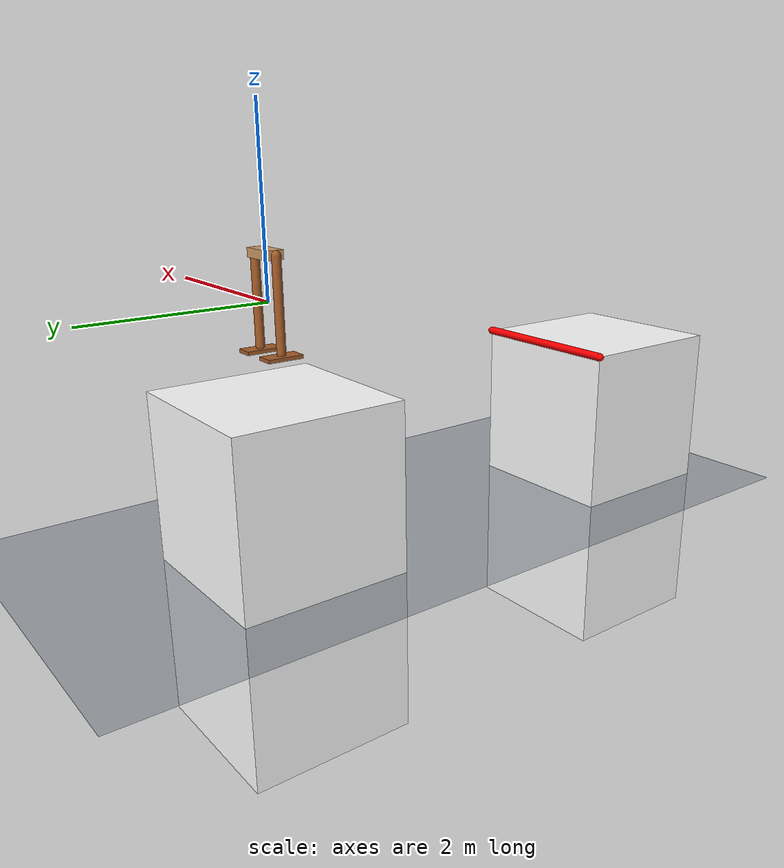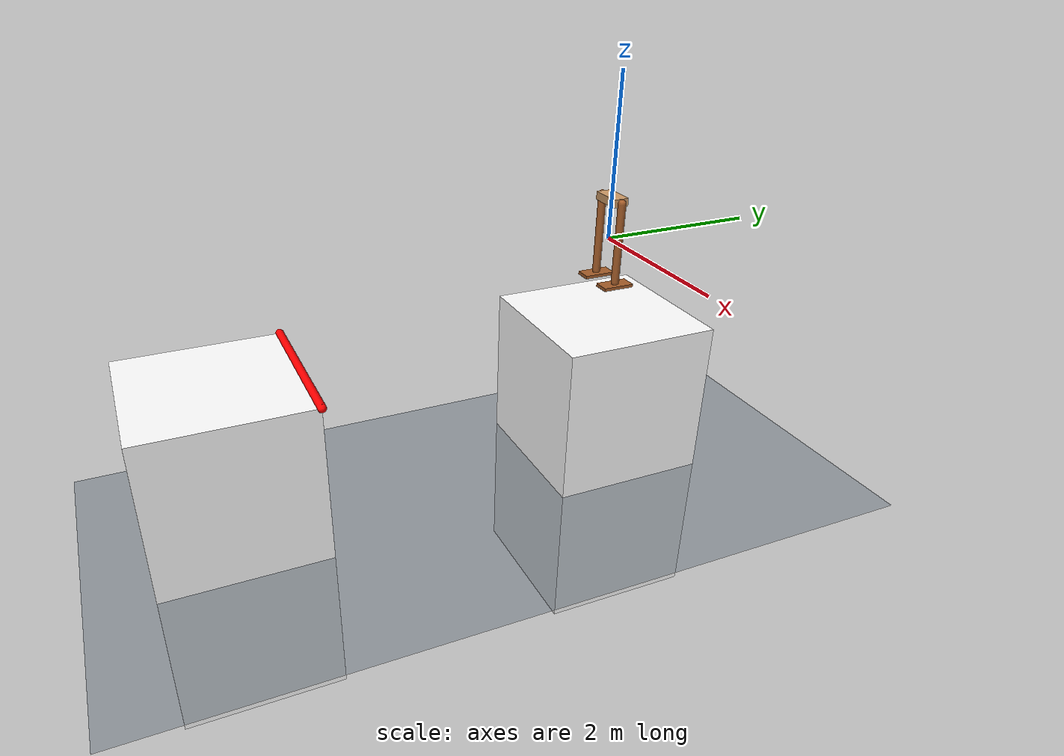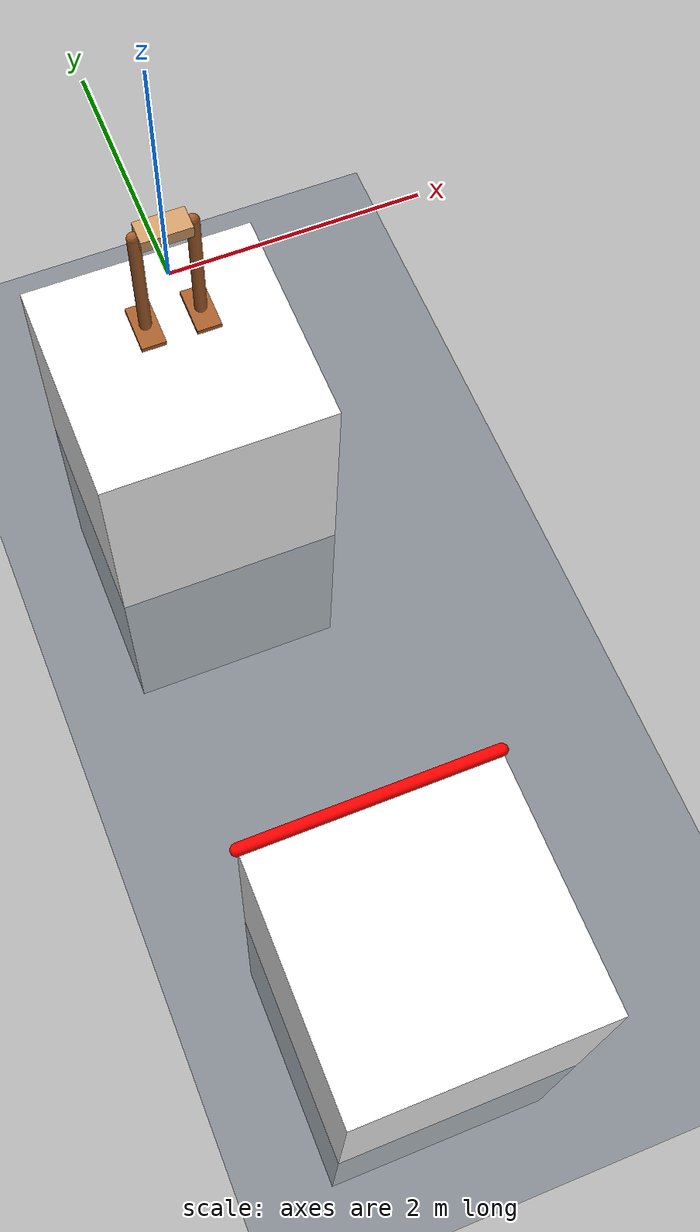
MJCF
<mujoco model="frog">
    <compiler inertiafromgeom="true" angle="degree"/>

    <default>
        <joint limited="true" damping="1" armature="0"/>
        <geom condim="1" material="matgeom"/>
        <motor ctrlrange="-.4 .4" ctrllimited="true"/>
    </default>

    <option timestep="0.005" iterations="50" tolerance="1e-10" solver="Newton" jacobian="dense" cone="pyramidal"/>

    <size nconmax="50" njmax="200" nstack="10000"/>

    <visual>
        <map force="0.1" zfar="30"/>
        <rgba haze="0.15 0.25 0.35 1"/>
        <quality shadowsize="2048"/>
        <global offwidth="800" offheight="800"/>
    </visual>

    <asset>
        <texture type="skybox" builtin="gradient" rgb1="0.3 0.5 0.7" rgb2="0 0 0" width="512" height="512"/>

        <texture name="texplane" type="2d" builtin="checker" rgb1=".2 .3 .4" rgb2=".1 0.15 0.2" width="512" height="512" mark="cross" markrgb=".8 .8 .8"/>

        <texture name="texgeom" type="cube" builtin="flat" mark="cross" width="127" height="1278"
            rgb1="0.8 0.6 0.4" rgb2="0.8 0.6 0.4" markrgb="1 1 1" random="0.01"/>

        <material name="matplane" reflectance="0.3" texture="texplane" texrepeat="1 1" texuniform="true"/>

        <material name="matgeom" texture="texgeom" texuniform="true" rgba="0.8 0.6 .4 1"/>
    </asset>

    <worldbody>
    <geom name="floor" pos="0 0 -3" size="0 0 .25" type="plane" material="matplane" condim="3"/>
    <geom name="platform_start" type="box" size="1 1 2" pos= "0 0 -3" rgba="1 1 1 1"/>
    <geom name="platform_end" type="box" size="1 1 2" pos= "0 -5 -3" rgba="1 1 1 1"/>
    <geom name="highlighted_edge" type="capsule" fromto="-1 -4 -1 1 -4 -1" size="0.05" rgba="1 0 0 1"/>

        <!-- Central Body  -->
        <body name="frog">
            <freejoint/>
        <body name="central_body" pos="0 0 0.5">
            <inertial pos="0 0 0.5" mass="300.0" diaginertia="0.1 0.1 0.1"/>
            <camera name="fixed_cam" pos="0 0 0.5" quat="0 0 0.707 0.707" fovy="45"/>
            <geom type="box" size="0.2 0.1 0.05" rgba="0.8 0.6 0.4 1"/>

            <!-- First Leg -->
            <body name="left_leg" pos="0.225 0 0">
                <joint name="left_piston" type="slide" pos="0 0 -1" axis="0 0 1" range="0 0.5"/>
                <joint name="left_shoulder" type="hinge" pos="0.225 0 -0.5" axis="1 0 0" range="-30 30" limited="true" />
                <geom type="capsule" size="0.05 0.5" pos="0 0 -0.5"/>
                <body name="left_foot" pos="0.225 0 0">
                    <geom type="box" size="0.1 0.2 0.02" pos= "-0.225 0 -1.04" />
                    <joint name="left_ankle" type="hinge" pos="-0.225 0 -1.04" axis="1 0 0" range="-30 30" limited="true" />
                </body>
            </body>

            <!-- Second Leg -->
            <body name="right_leg" pos="-0.225 0 0">
                <joint name="right_piston" type="slide" pos="0 0 -1" axis="0 0 1" range="0 0.5"/>
                <joint name="right_shoulder" type="hinge" pos="-0.225 0 -0.5" axis="1 0 0" range="-30 30" limited="true" />
                <geom type="capsule" size="0.05 0.5" pos="0 0 -0.5"/>
                <body name="right_foot" pos="-0.225 0 0">
                    <geom type="box" size="0.1 0.2 0.02" pos= "0.225 0 -1.04" />
                    <joint name="right_ankle" type="hinge" pos="0.225 0 -1.04" axis="1 0 0" range="-30 30" limited="true" />
                </body>
            </body>
        </body>
        </body>
    </worldbody>

    <!-- Motors -->
    <actuator>
        <motor name="left piston" joint="left_piston" gear="400"/>
        <motor name ="right piston" joint="right_piston" gear="400"/>

        <motor name="left shoulder" joint="left_shoulder" gear="400"/>
        <motor name="right shoulder" joint="right_shoulder" gear="400"/>
    </actuator>
</mujoco>
